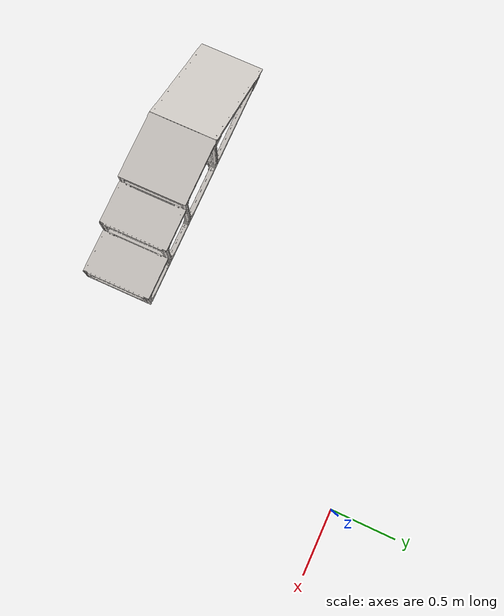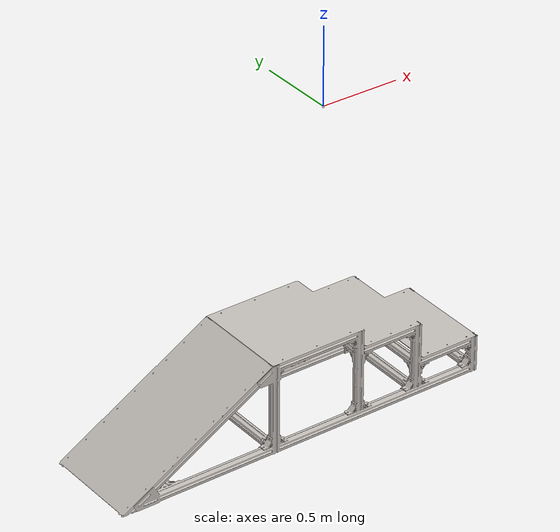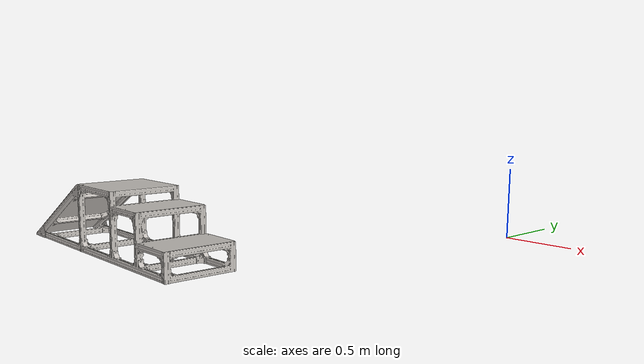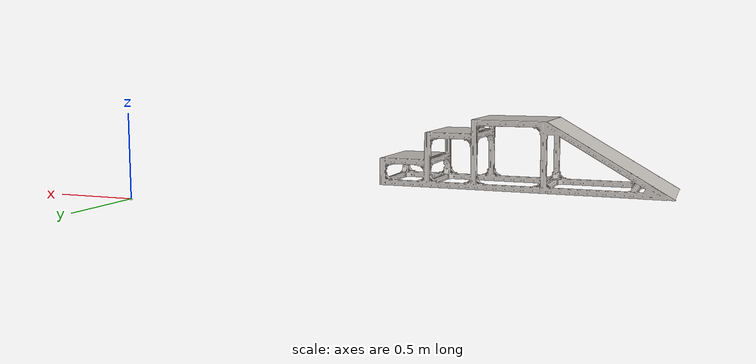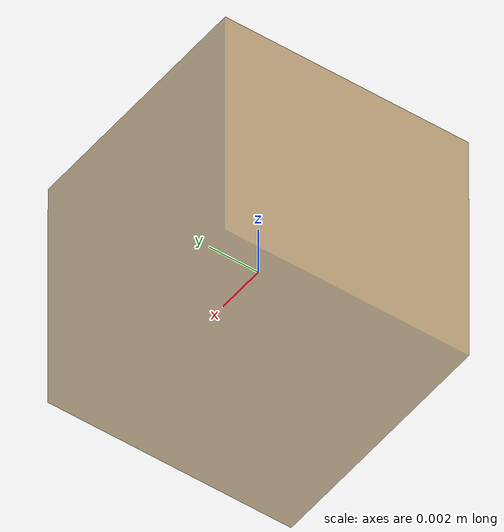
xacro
<?xml version="1.0"?>

<robot name="myrobot"
    xmlns:xacro="http://www.ros.org/wiki/xacro">

    <link name="world">
    </link>

  <link name="world_link" >
    <visual>
        <geometry>
            <box size = "0.01 0.01 0.01" />
        </geometry>
        <origin xyz="0 0 0" rpy="0 0 0"/>
        <material name="yellow">
            <color rgba="0.5 0.3 0 0.5"/>
        </material>

    </visual>
  </link>

    <joint name="world_joint" type="fixed">
        <parent link="world"/>
        <child link="world_link"/>
    </joint>

    <joint name="base_joint" type="fixed">
        <parent link="world_link"/>
        <child link="base_link"/>
    </joint>

    <link name="base_link">
        <inertial>
            <origin xyz="-1.83450203172901 0.142276541425279 2.10350874216609" rpy="0 0 0" />
            <mass value="55.0687083644952" />
            <inertia ixx="0.935368599462166" ixy="-0.129053601896683" ixz="-1.04938127713822E-08" iyy="1.72350394187313" iyz="-3.77617773319357E-09" izz="1.06328898234369" />
        </inertial>
        <visual>
            <origin xyz="0 0 0" rpy="0 0 0" />
            <geometry>
                <mesh filename="package://whell_describe/meshes/obstacle.STL" />
            </geometry>
            <material name="">
                <color rgba="0.776470588235294 0.756862745098039 0.737254901960784 1" />
            </material>
        </visual>
        <collision>
            <origin xyz="0 0 0" rpy="0 0 0" />
            <geometry>
                <mesh filename="package://whell_describe/meshes/obstacle.STL" />
            </geometry>
        </collision>
    </link>

    <gazebo reference="base_link">
        <mu1>1</mu1>
        <mu2>1</mu2>
        <self_collide>1</self_collide>
        <kp value="1000000.0"/>
        <kd value="1.0"/>
        <material>Gazebo/DarkMagentaTransparent</material>
    </gazebo>

</robot>
